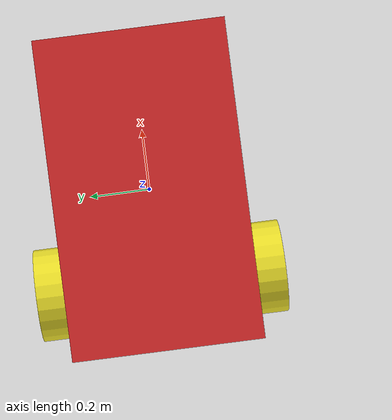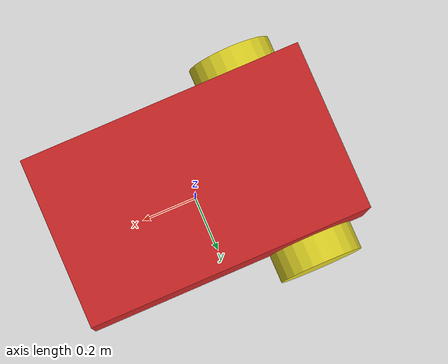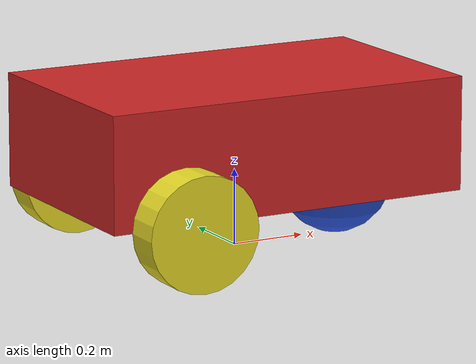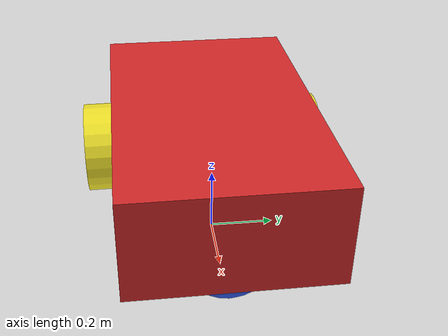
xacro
<?xml version="1.0"?>
<robot name="differential drive robot" xmlns:xacro="http://www.ros.org/wiki/xacro">

<!-- Define the value of pi -->
<xacro:property name="pi_const" value="3.14159"/>

<!-- Body parameters -->
<xacro:property name="a" value="1"/>
<xacro:property name="b" value="0.3"/>
<xacro:property name="c" value="0.6"/>
<xacro:property name="r" value="0.15"/>
<xacro:property name="d" value="0.1"/>

  <xacro:property name="s1" value="${b/2+r}"/>
  <xacro:property name="s2" value="${2*r}"/>
  <xacro:property name="s3" value="${2*r}"/>
  <xacro:property name="s4" value="${c/2+d/2}"/>

<!-- densities -->
<xacro:property name="d1" value="2710.0"/>
<xacro:property name="d2" value="2710.0"/>
<xacro:property name="d3" value="2710.0"/>

<!-- mass -->
<xacro:property name="m1" value="${d1*a*b*c}"/>
<xacro:property name="m2" value="${d2*pi_const*r*r*d}"/>
<xacro:property name="m3" value="${d3*(4.0/3.0)*pi_const*r*r*r}"/>

<xacro:property name="Ix_body" value="${(1/12.0)*m1*(b*b+c*c)}"/>
<xacro:property name="Iy_body" value="${(1/12.0)*m1*(b*b+a*a)}"/>
<xacro:property name="Iz_body" value="${(1/12.0)*m1*(a*a+c*c)}"/>

<xacro:property name="Iz_wheel" value="${0.5*m2*r*r}"/>
<xacro:property name="I_wheel" value="${(1/12.0)*m2*(3.0*r*r+d*d)}"/>

<xacro:property name="I_caster" value="${(2.0/5.0)*m3*r*r}"/>

<xacro:macro name="inertia_body">
    <inertial>
    <origin xyz="0 0 ${s1}" rpy="0 0 0"/>
        <mass value="${m1}"/>
        <inertia ixx="${Ix_body}" ixy="0" ixz="0" iyy="${Iy_body}" iyz="0" izz="${Iz_body}"/>
    </inertial>
</xacro:macro>

<xacro:macro name="inertia_wheel">
    <inertial>
        <origin xyz="0 0 0" rpy="1.5787 0 0"/>
        <mass value="${m2}"/>
        <inertia ixx="${I_wheel}" ixy="0" ixz="0" iyy="${I_wheel}" iyz="0" izz="${Iz_wheel}"/>
    </inertial>
</xacro:macro>

<xacro:macro name="inertia_caster">
    <inertial>
        <origin xyz="0 0 0" rpy="0 0 0"/>
        <mass value="${m3}"/>
        <inertia ixx="${I_caster}" ixy="0" ixz="0" iyy="${I_caster}" iyz="0" izz="${I_caster}"/>
    </inertial>
</xacro:macro>

<xacro:include filename="$(find gazeboRobot)/model/model.gazebo"/>

<link name="base_footprint"></link>

<joint name="body_link_joint" type="fixed">
    <parent link="base_footprint"/>
    <child link="body_link"/>
</joint>

<link name="body_link">
    <visual>
        <geometry>
            <box size="${a} ${c} ${b}"/>
        </geometry>
        <origin xyz="0 0 ${s1}" rpy="0 0 0"/>
    </visual>
    <collision>
        <geometry>
            <box size="${a} ${c} ${b}"/>
        </geometry>
        <origin xyz="0 0 ${s1}" rpy="0 0 0"/>
    </collision>
    <xacro:inertia_body/>
</link>

<joint name="wheel_right_joint" type="continuous">
    <parent link="body_link"/>
    <child link="wheel_right"/>
    <origin xyz="${-s2} ${-s4} ${r}" rpy="0 0 0"/>
    <axis xyz="0 1 0"/>
    <limits effort="50000" velocity="10"/>
    <dynamics damping="0.5" friction="0.5"/>
</joint>

<link name="wheel_right">
    <visual>
        <geometry>
            <cylinder radius="${r}" length="${d}"/>
        </geometry>
        <origin xyz="0 0 0" rpy="1.5787 0 0"/>
    </visual>
    <collision>
        <geometry>
            <cylinder radius="${r}" length="${d}"/>
        </geometry>
       </collision>
    <xacro:inertia_wheel/>
</link>

<joint name="wheel_left_joint" type="continuous">
    <parent link="body_link"/>
    <child link="wheel_left"/>
    <origin xyz="${-s2} ${s4} ${r}" rpy="0 0 0"/>
    <axis xyz="0 1 0"/>
    <limits effort="50000" velocity="10"/>
    <dynamics damping="0.5" friction="0.5"/>
</joint>

<link name="wheel_left">
    <visual>
        <geometry>
            <cylinder radius="${r}" length="${d}"/>
        </geometry>
        <origin xyz="0 0 0" rpy="1.5787 0 0"/>
    </visual>
    <collision>
        <geometry>
            <cylinder radius="${r}" length="${d}"/>
        </geometry>
       </collision>
    <xacro:inertia_wheel/>
</link>

<joint name="caster_joint" type="continuous">
    <parent link="body_link"/>
    <child link="caster"/>
    <origin xyz="${s3} 0 ${r}" rpy="0 0 0"/>
    <axis xyz="1 1 1"/>
    <dynamics damping="0.5" friction="0.0005"/>
</joint>

<link name="caster">
    <visual>
        <geometry>
            <sphere radius="${r}"/>
        </geometry>
        <origin xyz="0 0 0" rpy="0 0 0"/>
    </visual>
    <collision>
        <geometry>
            <sphere radius="${r}"/>
        </geometry>
    </collision>
    <xacro:inertia_caster/>
</link>

</robot>
